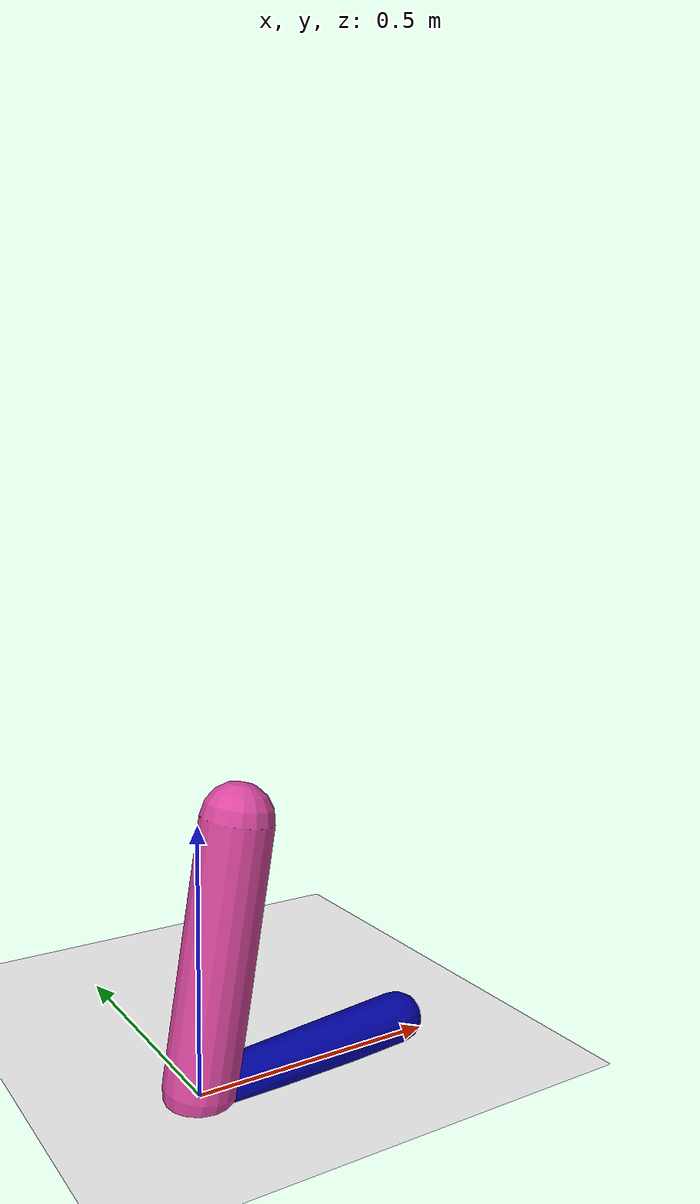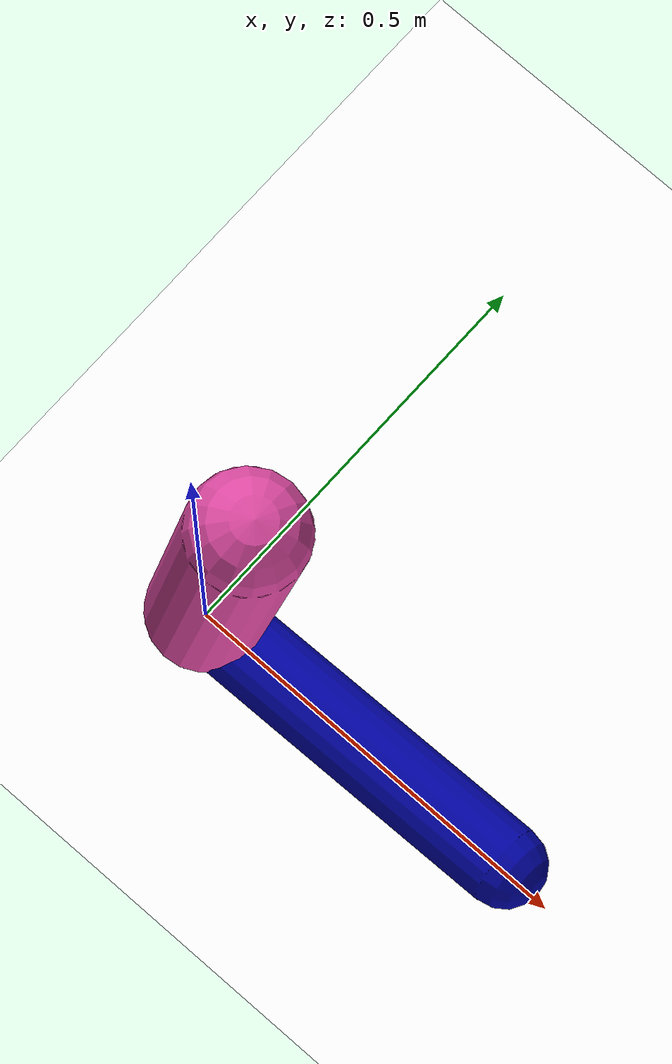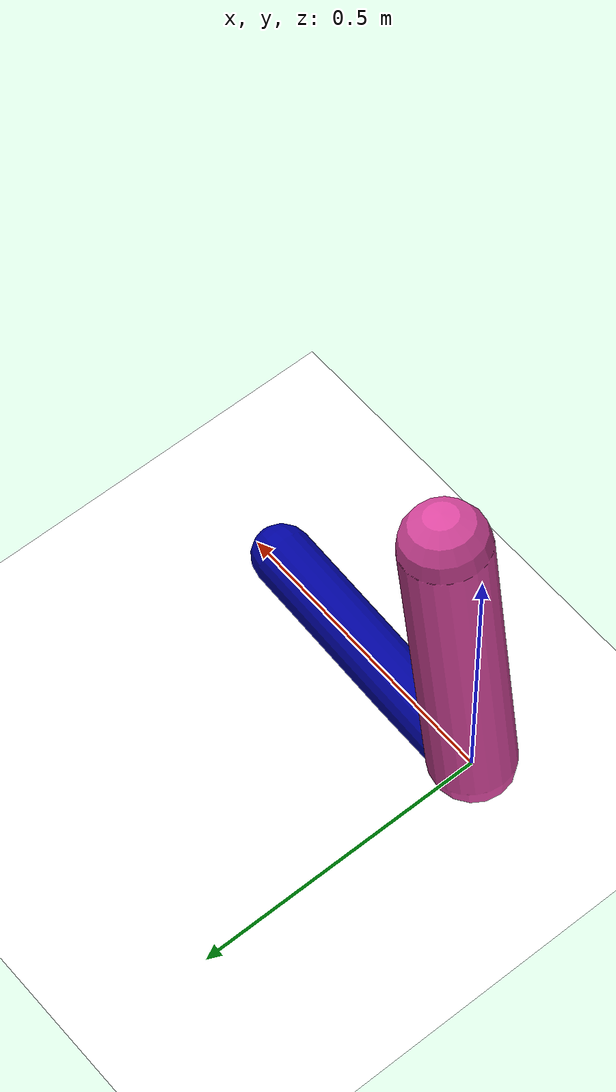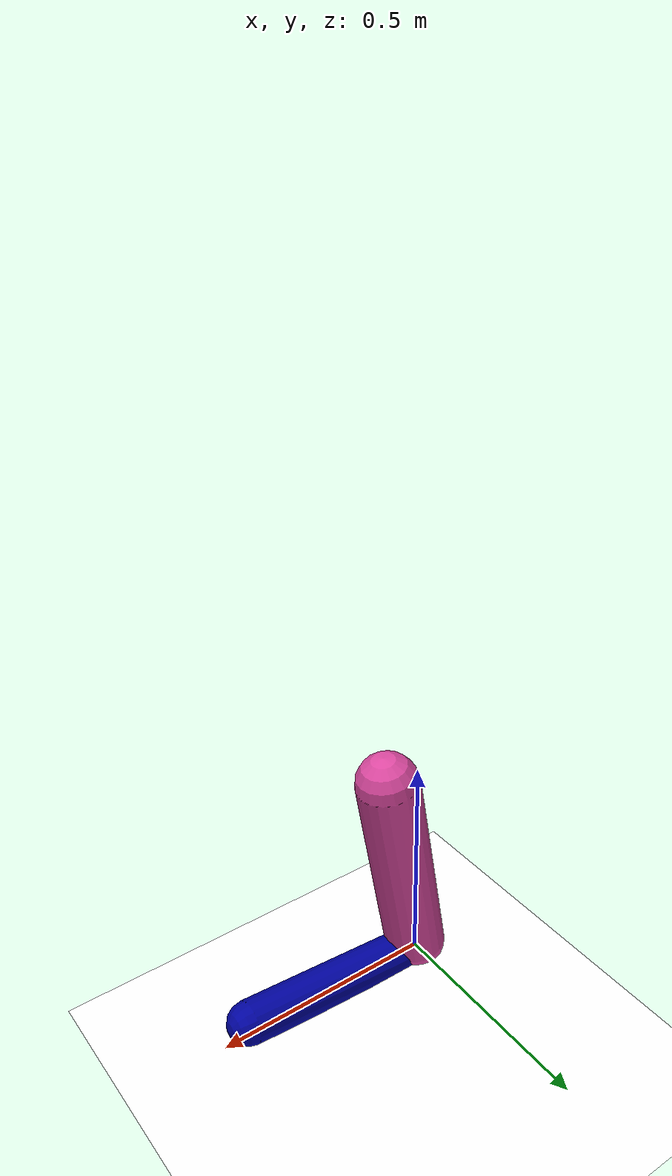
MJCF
<mujoco model="morphology">
    <option timestep="0.01" />
    <custom>
        <!-- brax custom params -->
        <numeric data="1000" name="constraint_limit_stiffness" />
        <numeric data="4000" name="constraint_stiffness" />
        <numeric data="10" name="constraint_ang_damping" />
        <numeric data="20" name="constraint_vel_damping" />
        <numeric data="0.5" name="joint_scale_pos" />
        <numeric data="0.2" name="joint_scale_ang" />
        <numeric data="0.0" name="ang_damping" />
        <numeric data="1" name="spring_mass_scale" />
        <numeric data="1" name="spring_inertia_scale" />
        <numeric data="15" name="solver_maxls" />
    </custom>
    <default>
        <default class="/" />
        <default class="0/" />
        <default class="0/1/" />
    </default>
    <asset>
        <texture name="texplane" type="2d" builtin="checker"
            rgb1="0.10000000000000001 0.20000000000000001 0.29999999999999999"
            rgb2="0.20000000000000001 0.29999999999999999 0.40000000000000002" width="300"
            height="300" />
        <material name="MatPlane" class="/" texture="texplane" texrepeat="20 20" specular="1.0"
            shininess="1.0" reflectance="0.5" />
    </asset>
    <worldbody>
        <light name="//unnamed_light_0" class="/" directional="true" pos="0 0 1.5" dir="0 0 -1.3"
            cutoff="100.0" exponent="1.0" diffuse="1 1 1"
            specular="0.10000000000000001 0.10000000000000001 0.10000000000000001" />
        <geom name="ground" class="/" type="plane" size="15 15 0.5" material="MatPlane"
            rgba="1 1 1 1" />
        <site name="body" class="/"
            size="9.9999999999999995e-07 9.9999999999999995e-07 9.9999999999999995e-07"
            pos="0 0 1.6446825361251831" />
        <body pos="0 0 0" name="0/">
            <joint name="0/rootx/" class="/" type="slide" axis="1 0 0" stiffness="0.0"
                armature="0.0" damping="0.0" />
            <joint name="0/rootz/" class="/" type="slide" axis="0 0 1" stiffness="0.0"
                armature="0.0" damping="0.0" />
            <joint name="0/rooty/" class="/" type="hinge" axis="0 1 0" stiffness="0.0"
                armature="0.0" damping="0.0" />
            <geom name="0/geom" class="0/" type="capsule" contype="1" conaffinity="1" condim="3"
                size="0.048470334428519793"
                rgba="0.00033081932194189978 0.012455012886624872 0.63742753509390848 1"
                friction="0.59999999999999998 0.10000000000000001 0.10000000000000001"
                fromto="0 0 0 0.43986990955996008 0 0.037582513527956607" />
            <body pos="0 0 0.015156067692169723" name="0/1/">
                <joint name="0/1/joint/" class="0/" type="hinge" axis="0 1 0" limited="true"
                    stiffness="100.0" range="-59.967968634045079 59.967968634045079" armature="0.2"
                    damping="3.5" />
                <geom name="0/1/geom" class="0/1/" type="capsule" contype="1" conaffinity="1"
                    condim="3" size="0.06845958618526804"
                    rgba="0.87108043698540449 0.28535127249538017 0.63559308946676174 1"
                    friction="0.59999999999999998 0.10000000000000001 0.10000000000000001"
                    fromto="0 0 0 0.078363312647046768 0 0.48536182802937633" />
            </body>
        </body>
    </worldbody>
    <actuator>
        <motor name="0/1/motor" class="0/1/" ctrllimited="true" ctrlrange="-1 1" gear="150"
            joint="0/1/joint/" />
    </actuator>
</mujoco>
